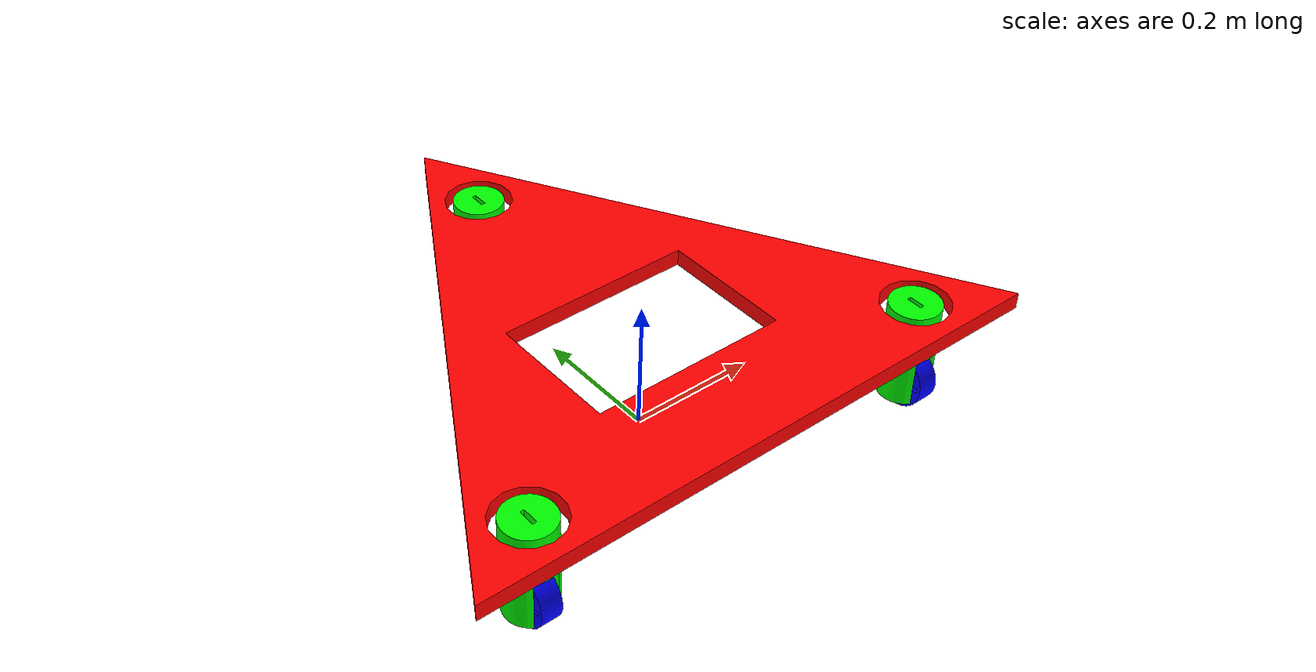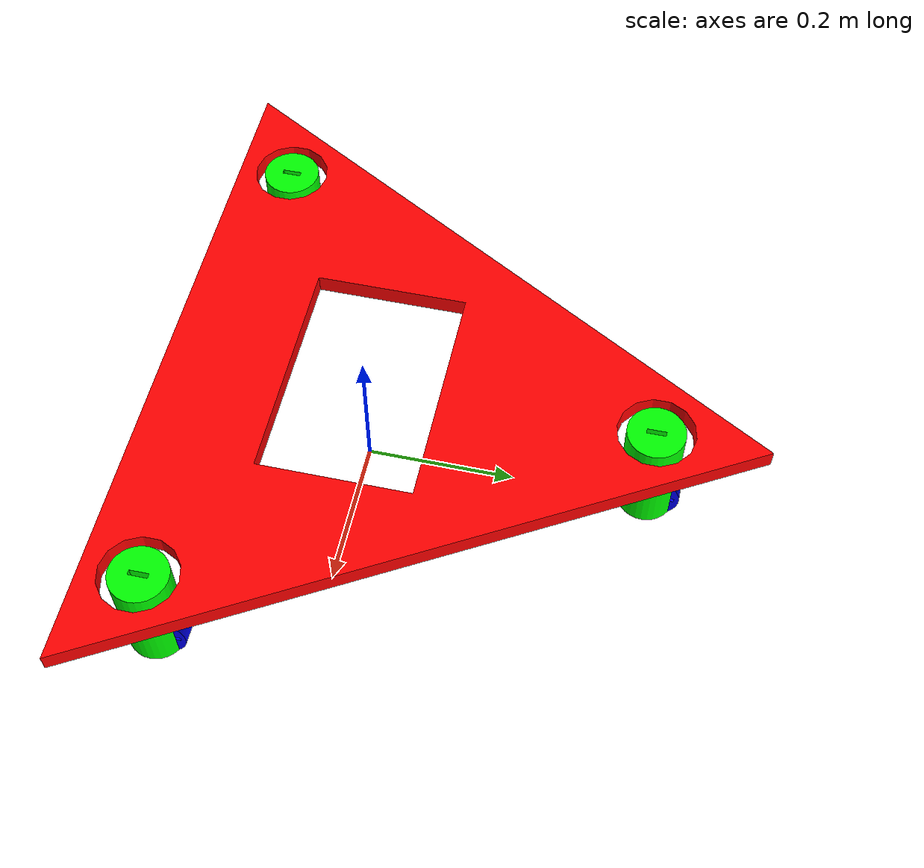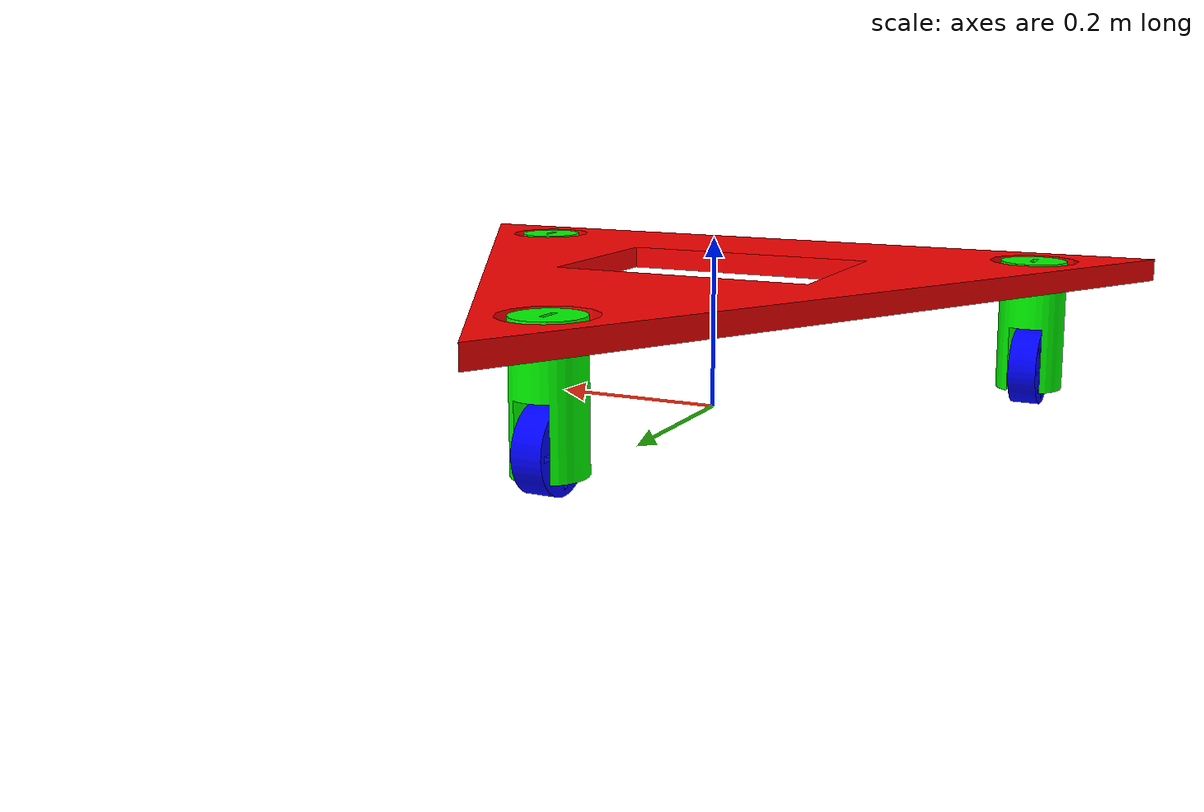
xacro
<?xml version="1.0"?>

<!--
Highest level XACRO file for the swerve robot
Author: Frederick Wachter - wachterfreddy@gmail.com
Created: 2017-07-15
-->

<robot name="swerve" xmlns:xacro="http://www.ros.org/wiki/xacro">

  <!--
    IMPORTS
  -->

  <!-- Import constants and modeling macros -->
  <xacro:include filename="$(find swerve_description)/robots/swerve_utilities.xacro"/>

  <!-- Import swerve robot -->
  <xacro:include filename="$(find swerve_description)/robots/swerve.xacro"/>

  <!--
    WORLD DEFINITION
  -->

  <!-- Fixed dummy frame -->
  <link name="swerve_base" />

  <!--
    MACRO DEFINITIONS
  -->

  <!-- Define macros for swerve import -->
  <xacro:swerve name="swerve" parent="swerve_base">
	  <origin xyz="0 0 0.17" rpy="0 0 0"/>
  </xacro:swerve>

</robot>

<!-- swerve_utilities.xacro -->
<!--
XACRO file for constants and modeling macros
Author: Frederick Wachter - wachterfreddy@gmail.com
Created: 2017-07-15
-->

<robot name="swerve" xmlns:xacro="http://www.ros.org/wiki/xacro">

  <!-- Common geometry properties -->
  <xacro:property name="chassis_geometry">
    <geometry>
      <mesh filename="package://swerve_description/meshes/chassis.stl" />
    </geometry>
  </xacro:property>

  <xacro:property name="swivel_geometry">
    <geometry>
      <mesh filename="package://swerve_description/meshes/swivel.stl" />
    </geometry>
  </xacro:property>

  <xacro:property name="wheel_geometry">
    <geometry>
      <mesh filename="package://swerve_description/meshes/wheel.stl" />
    </geometry>
  </xacro:property>

  <!-- Color properties -->
  <xacro:property name="color_red">
    <material name="">
      <color rgba="1 0 0 1" />
    </material>
  </xacro:property>

  <xacro:property name="color_green">
    <material name="">
      <color rgba="0 1 0 1" />
    </material>
  </xacro:property>

  <xacro:property name="color_blue">
    <material name="">
      <color rgba="0 0 1 1" />
    </material>
  </xacro:property>

  <!-- Common visual and collision properties -->
  <xacro:property name="chassis_visual_collision">
    <visual>
      <origin xyz="0 0 0" rpy="0 0 0" />
      <xacro:insert_block name="chassis_geometry" />
      <xacro:insert_block name="color_red" />
    </visual>
    <collision>
      <origin xyz="0 0 0" rpy="0 0 0" />
      <xacro:insert_block name="chassis_geometry" />
    </collision>
  </xacro:property>

  <xacro:property name="swivel_visual_collision">
    <visual>
      <origin xyz="0 0 0" rpy="0 0 0" />
      <xacro:insert_block name="swivel_geometry" />
      <xacro:insert_block name="color_green" />
    </visual>
    <collision>
      <origin xyz="0 0 0" rpy="0 0 0" />
      <xacro:insert_block name="swivel_geometry" />
    </collision>
  </xacro:property>

  <xacro:property name="wheel_visual_collision">
    <visual>
      <origin xyz="0 0 0" rpy="0 0 0" />
      <xacro:insert_block name="wheel_geometry" />
      <xacro:insert_block name="color_blue" />
    </visual>
    <collision>
      <origin xyz="0 0 0" rpy="0 0 0" />
      <xacro:insert_block name="wheel_geometry" />
    </collision>
  </xacro:property>

  <!-- Common joint properties -->
  <xacro:macro name="wheel_joint" params="joint_name parent child">
    <joint name="${joint_name}" type="continuous">
      <origin xyz="0 -0.127 0" rpy="0 0 0" />
      <parent link="${parent}" />
      <child link="${child}" />
      <axis xyz="-1 0 0" />
    </joint>
  </xacro:macro>

  <!-- Constants -->
  <xacro:property name="chassis_mass" value="7.0052" />
  <xacro:property name="swivel_mass" value="0.449039" />
  <xacro:property name="wheel_mass" value="0.15026" />

</robot>

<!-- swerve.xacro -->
<!--
XACRO file for the swerve robot description
Author: Frederick Wachter - wachterfreddy@gmail.com
Created: 2017-07-15
-->

<robot name="swerve" xmlns:xacro="http://www.ros.org/wiki/xacro">

  <!-- Include constants and modeling macros -->
  <xacro:include filename="$(find swerve_description)/robots/swerve_utilities.xacro" />

  <xacro:macro name="swerve" params="parent name *origin">

    <!--
      DUMMY JOINT DEFINITION
    -->

    <joint name="${parent}_joint" type="fixed">
      <insert_block name="origin" />
      <parent link="${parent}" />
      <child link="${name}_body" />
    </joint>

    <!--
      CHASSIS DEFINITION
    -->
    <link name="${name}_body">
      <inertial>
        <origin xyz="9.6121E-17 -0.0127 -7.6853E-05" rpy="0 0 0" />
        <mass value="${chassis_mass}" />
        <inertia ixx="0.27011" ixy="1.9658E-19" ixz="1.4409E-16" iyy="0.5327" iyz="-3.5181E-19" izz="0.26334" />
      </inertial>
      <xacro:insert_block name="chassis_visual_collision" />
    </link>

    <!--
      FRONT SWIVEL DEFINITION
    -->
    <joint name="${name}_joint_FS" type="continuous">
      <origin xyz="0 0.381 0" rpy="1.5708 0 0" />
      <parent link="${name}_body" />
      <child link="${name}_FS_link" />
      <axis xyz="0 -1 0" />
    </joint>

    <link name="${name}_FS_link">
      <inertial>
        <origin xyz="-5.819E-13 -0.062713 0" rpy="0 0 0" />
        <mass value="${swivel_mass}" />
        <inertia ixx="0.0010313" ixy="1.377E-13" ixz="4.6213E-21" iyy="0.00038801" iyz="-9.7714E-21" izz="0.001103" />
      </inertial>
      <xacro:insert_block name="swivel_visual_collision" />
    </link>

    <xacro:wheel_joint joint_name="${name}_joint_FW" parent="${name}_FS_link" child="${name}_FW_link" />

    <link name="${name}_FW_link">
      <inertial>
        <origin xyz="-7.8185E-19 2.7756E-17 5.5511E-17" rpy="0 0 0" />
        <mass value="${wheel_mass}" />
        <inertia ixx="0.00016727" ixy="-4.9394E-22" ixz="-2.3462E-22" iyy="9.626E-05" iyz="-1.4682E-20" izz="9.626E-05" />
      </inertial>
      <xacro:insert_block name="wheel_visual_collision" />
    </link>

    <!--
      LEFT SWIVEL DEFINITION
    -->
    <joint name="${name}_joint_LS" type="continuous">
      <origin xyz="-0.32996 -0.1905 0" rpy="1.5708 0 0" />
      <parent link="${name}_body" />
      <child link="${name}_LS_link" />
      <axis xyz="0 -1 0" />
    </joint>

    <link name="${name}_LS_link">
      <inertial>
        <origin xyz="-5.8187E-13 -0.062713 0" rpy="0 0 0" />
        <mass value="${swivel_mass}" />
        <inertia ixx="0.0010313" ixy="1.377E-13" ixz="1.6475E-20" iyy="0.00038801" iyz="2.1123E-20" izz="0.001103" />
      </inertial>
      <xacro:insert_block name="swivel_visual_collision" />
    </link>

    <xacro:wheel_joint joint_name="${name}_joint_LW" parent="${name}_LS_link" child="${name}_LW_link" />

    <link name="${name}_LW_link">
      <inertial>
        <origin xyz="0 2.7756E-17 0" rpy="0 0 0" />
        <mass value="${wheel_mass}" />
        <inertia ixx="0.00016727" ixy="-1.3787E-22" ixz="-1.031E-22" iyy="9.626E-05" iyz="-3.3087E-21" izz="9.626E-05" />
      </inertial>
      <xacro:insert_block name="wheel_visual_collision" />
    </link>

    <!--
      RIGHT SWIVEL DEFINITION
    -->
    <joint name="${name}_joint_RS" type="continuous">
      <origin xyz="0.32996 -0.1905 0" rpy="1.5708 0 0" />
      <parent link="${name}_body" />
      <child link="${name}_RS_link" />
      <axis xyz="0 -1 0" />
    </joint>

    <link name="${name}_RS_link">
      <inertial>
        <origin xyz="-5.8192E-13 -0.062713 -2.7756E-17" rpy="0 0 0" />
        <mass value="${swivel_mass}" />
        <inertia ixx="0.0010313" ixy="1.377E-13" ixz="1.6475E-20" iyy="0.00038801" iyz="2.1123E-20" izz="0.001103" />
      </inertial>
      <xacro:insert_block name="swivel_visual_collision" />
    </link>

    <xacro:wheel_joint joint_name="${name}_joint_RW" parent="${name}_RS_link" child="${name}_RW_link" />

    <link name="${name}_RW_link">
      <inertial>
        <origin xyz="-5.5511E-17 2.7756E-17 -2.7756E-17" rpy="0 0 0" />
        <mass value="${wheel_mass}" />
        <inertia ixx="0.00016727" ixy="-1.3787E-22" ixz="-1.031E-22" iyy="9.626E-05" iyz="-3.3087E-21" izz="9.626E-05" />
      </inertial>
      <xacro:insert_block name="wheel_visual_collision" />
    </link>

  </xacro:macro>

</robot>
